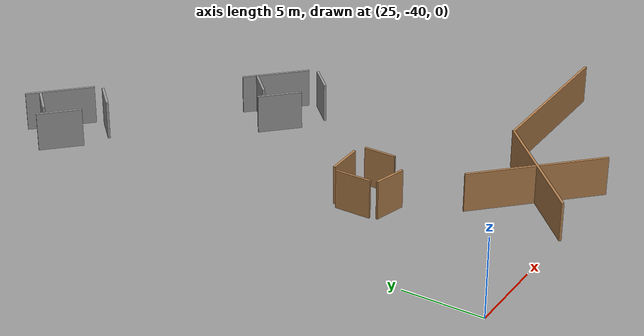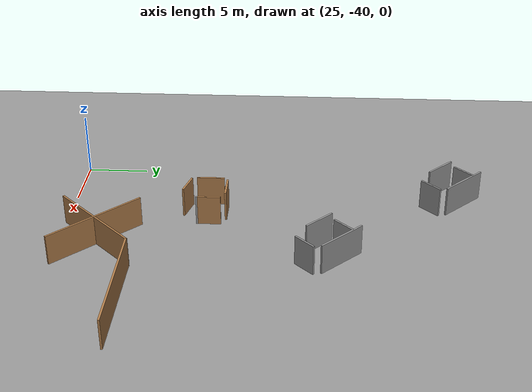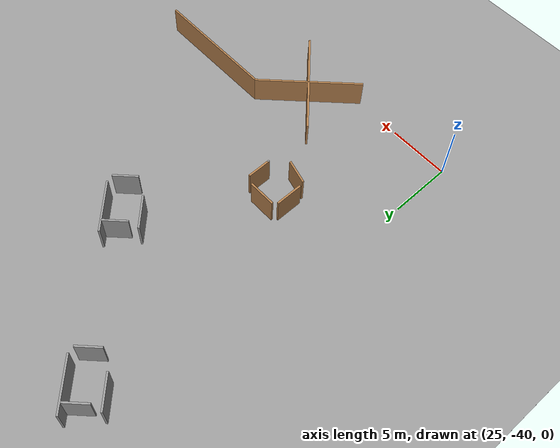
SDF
<sdf version="1.5">
 <world name="default">
  <model name="ground_plane">
   <static>1</static>
   <link name="link">
    <collision name="collision">
     <geometry><plane><normal>0 0 1</normal><size>100 100</size></plane></geometry>
     <surface><friction><ode><mu>100</mu><mu2>50</mu2></ode></friction></surface>
    </collision>
    <visual name="visual">
     <cast_shadows>0</cast_shadows>
     <geometry><plane><normal>0 0 1</normal><size>100 100</size></plane></geometry>
     <material>
      <script><uri>file://media/materials/scripts/gazebo.material</uri><name>Gazebo/Grey</name></script>
     </material>
    </visual>
   </link>
  </model>
  <model name="ground_plane_5">
   <static>1</static>
   <link name="link">
    <collision name="collision">
     <geometry><plane><normal>0 0 1</normal><size>100 100</size></plane></geometry>
     <surface><friction><ode><mu>100</mu><mu2>50</mu2></ode></friction></surface>
    </collision>
    <visual name="visual">
     <cast_shadows>0</cast_shadows>
     <geometry><plane><normal>0 0 1</normal><size>100 100</size></plane></geometry>
     <material>
      <script><uri>file://media/materials/scripts/gazebo.material</uri><name>Gazebo/Grey</name></script>
     </material>
    </visual>
   </link>
   <pose>34 -30 0 0 -0 0</pose>
  </model>
  <model name="wall-10m-ofoghi_13">
   <pose>45 -34 0 0 -0 0</pose>
   <link name="Wall_22">
    <collision name="Wall_22_Collision">
     <geometry><box><size>10 0.15 2.5</size></box></geometry>
     <pose>0 0 1.25 0 -0 0</pose>
    </collision>
    <visual name="Wall_22_Visual">
     <pose>0 0 1.25 0 -0 0</pose>
     <geometry><box><size>10 0.15 2.5</size></box></geometry>
     <material>
      <script><uri>file://media/materials/scripts/gazebo.material</uri><name>Gazebo/Wood</name></script>
      <ambient>1 1 1 1</ambient>
     </material>
    </visual>
   </link>
   <static>1</static>
  </model>
  <model name="obs2_2">
   <pose>29 -9 0 0 -0 0</pose>
   <link name="Wall_0">
    <collision name="Wall_0_Collision">
     <geometry><box><size>2 0.15 2.5</size></box></geometry>
     <pose>0 0 1.25 0 -0 0</pose>
    </collision>
    <visual name="Wall_0_Visual">
     <pose>0 0 1.25 0 -0 0</pose>
     <geometry><box><size>2 0.15 2.5</size></box></geometry>
     <material>
      <script><uri>file://media/materials/scripts/gazebo.material</uri><name>Gazebo/Grey</name></script>
      <ambient>1 1 1 1</ambient>
     </material>
    </visual>
    <pose>-0.796332 1.10862 0 0 -0 0.785398</pose>
   </link>
   <link name="Wall_2">
    <collision name="Wall_2_Collision">
     <geometry><box><size>4.25 0.15 2.5</size></box></geometry>
     <pose>0 0 1.25 0 -0 0</pose>
    </collision>
    <visual name="Wall_2_Visual">
     <pose>0 0 1.25 0 -0 0</pose>
     <geometry><box><size>4.25 0.15 2.5</size></box></geometry>
     <material>
      <script><uri>file://media/materials/scripts/gazebo.material</uri><name>Gazebo/Grey</name></script>
      <ambient>1 1 1 1</ambient>
     </material>
    </visual>
    <pose>0.773928 0.982661 0 0 0 -0.785398</pose>
   </link>
   <link name="Wall_4">
    <collision name="Wall_4_Collision">
     <geometry><box><size>2.75 0.15 2.5</size></box></geometry>
     <pose>0 0 1.25 0 -0 0</pose>
    </collision>
    <visual name="Wall_4_Visual">
     <pose>0 0 1.25 0 -0 0</pose>
     <geometry><box><size>2.75 0.15 2.5</size></box></geometry>
     <material>
      <script><uri>file://media/materials/scripts/gazebo.material</uri><name>Gazebo/Grey</name></script>
      <ambient>1 1 1 1</ambient>
     </material>
    </visual>
    <pose>-1.45556 -0.740711 0 0 0 -0.785398</pose>
   </link>
   <link name="Wall_6">
    <collision name="Wall_6_Collision">
     <geometry><box><size>2 0.15 2.5</size></box></geometry>
     <pose>0 0 1.25 0 -0 0</pose>
    </collision>
    <visual name="Wall_6_Visual">
     <pose>0 0 1.25 0 -0 0</pose>
     <geometry><box><size>2 0.15 2.5</size></box></geometry>
     <material>
      <script><uri>file://media/materials/scripts/gazebo.material</uri><name>Gazebo/Grey</name></script>
      <ambient>1 1 1 1</ambient>
     </material>
    </visual>
    <pose>1.72073 -1.77816 0 0 -0 0.785398</pose>
   </link>
   <static>1</static>
  </model>
  <model name="obs2_5">
   <pose>38 -19 0 0 -0 0</pose>
   <link name="Wall_0">
    <collision name="Wall_0_Collision">
     <geometry><box><size>2 0.15 2.5</size></box></geometry>
     <pose>0 0 1.25 0 -0 0</pose>
    </collision>
    <visual name="Wall_0_Visual">
     <pose>0 0 1.25 0 -0 0</pose>
     <geometry><box><size>2 0.15 2.5</size></box></geometry>
     <material>
      <script><uri>file://media/materials/scripts/gazebo.material</uri><name>Gazebo/Grey</name></script>
      <ambient>1 1 1 1</ambient>
     </material>
    </visual>
    <pose>-0.796332 1.10862 0 0 -0 0.785398</pose>
   </link>
   <link name="Wall_2">
    <collision name="Wall_2_Collision">
     <geometry><box><size>4.25 0.15 2.5</size></box></geometry>
     <pose>0 0 1.25 0 -0 0</pose>
    </collision>
    <visual name="Wall_2_Visual">
     <pose>0 0 1.25 0 -0 0</pose>
     <geometry><box><size>4.25 0.15 2.5</size></box></geometry>
     <material>
      <script><uri>file://media/materials/scripts/gazebo.material</uri><name>Gazebo/Grey</name></script>
      <ambient>1 1 1 1</ambient>
     </material>
    </visual>
    <pose>0.773928 0.982661 0 0 0 -0.785398</pose>
   </link>
   <link name="Wall_4">
    <collision name="Wall_4_Collision">
     <geometry><box><size>2.75 0.15 2.5</size></box></geometry>
     <pose>0 0 1.25 0 -0 0</pose>
    </collision>
    <visual name="Wall_4_Visual">
     <pose>0 0 1.25 0 -0 0</pose>
     <geometry><box><size>2.75 0.15 2.5</size></box></geometry>
     <material>
      <script><uri>file://media/materials/scripts/gazebo.material</uri><name>Gazebo/Grey</name></script>
      <ambient>1 1 1 1</ambient>
     </material>
    </visual>
    <pose>-1.45556 -0.740711 0 0 0 -0.785398</pose>
   </link>
   <link name="Wall_6">
    <collision name="Wall_6_Collision">
     <geometry><box><size>2 0.15 2.5</size></box></geometry>
     <pose>0 0 1.25 0 -0 0</pose>
    </collision>
    <visual name="Wall_6_Visual">
     <pose>0 0 1.25 0 -0 0</pose>
     <geometry><box><size>2 0.15 2.5</size></box></geometry>
     <material>
      <script><uri>file://media/materials/scripts/gazebo.material</uri><name>Gazebo/Grey</name></script>
      <ambient>1 1 1 1</ambient>
     </material>
    </visual>
    <pose>1.72073 -1.77816 0 0 -0 0.785398</pose>
   </link>
   <static>1</static>
  </model>
  <model name="obs1_6">
   <pose>32 -29 0 0 -0 0</pose>
   <link name="Wall_10">
    <collision name="Wall_10_Collision">
     <geometry><box><size>2 0.15 2.5</size></box></geometry>
     <pose>0 0 1.25 0 -0 0</pose>
    </collision>
    <visual name="Wall_10_Visual">
     <pose>0 0 1.25 0 -0 0</pose>
     <geometry><box><size>2 0.15 2.5</size></box></geometry>
     <material>
      <script><uri>file://media/materials/scripts/gazebo.material</uri><name>Gazebo/Wood</name></script>
      <ambient>1 1 1 1</ambient>
     </material>
    </visual>
    <pose>-0.505188 -1.46687 0 0 0 -0.261799</pose>
   </link>
   <link name="Wall_2">
    <collision name="Wall_2_Collision">
     <geometry><box><size>2.25 0.15 2.5</size></box></geometry>
     <pose>0 0 1.25 0 -0 0</pose>
    </collision>
    <visual name="Wall_2_Visual">
     <pose>0 0 1.25 0 -0 0</pose>
     <geometry><box><size>2.25 0.15 2.5</size></box></geometry>
     <material>
      <script><uri>file://media/materials/scripts/gazebo.material</uri><name>Gazebo/Wood</name></script>
      <ambient>1 1 1 1</ambient>
     </material>
    </visual>
    <pose>-1.58039 0.313508 0 0 0 -1.5708</pose>
   </link>
   <link name="Wall_5">
    <collision name="Wall_5_Collision">
     <geometry><box><size>2.25 0.15 2.5</size></box></geometry>
     <pose>0 0 1.25 0 -0 0</pose>
    </collision>
    <visual name="Wall_5_Visual">
     <pose>0 0 1.25 0 -0 0</pose>
     <geometry><box><size>2.25 0.15 2.5</size></box></geometry>
     <material>
      <script><uri>file://media/materials/scripts/gazebo.material</uri><name>Gazebo/Wood</name></script>
      <ambient>1 1 1 1</ambient>
     </material>
    </visual>
    <pose>-0.185262 1.72313 0 0 -0 0</pose>
   </link>
   <link name="Wall_7">
    <collision name="Wall_7_Collision">
     <geometry><box><size>2 0.15 2.5</size></box></geometry>
     <pose>0 0 1.25 0 -0 0</pose>
    </collision>
    <visual name="Wall_7_Visual">
     <pose>0 0 1.25 0 -0 0</pose>
     <geometry><box><size>2 0.15 2.5</size></box></geometry>
     <material>
      <script><uri>file://media/materials/scripts/gazebo.material</uri><name>Gazebo/Wood</name></script>
      <ambient>1 1 1 1</ambient>
     </material>
    </visual>
    <pose>1.58039 0.398833 0 0 0 -1.5708</pose>
   </link>
   <link name="Wall_8">
    <collision name="Wall_8_Collision">
     <geometry><box><size>0.15 0.15 2.5</size></box></geometry>
     <pose>0 0 1.25 0 -0 0</pose>
    </collision>
    <visual name="Wall_8_Visual">
     <pose>0 0 1.25 0 -0 0</pose>
     <geometry><box><size>0.15 0.15 2.5</size></box></geometry>
     <material>
      <script><uri>file://media/materials/scripts/gazebo.material</uri><name>Gazebo/Grey</name></script>
      <ambient>1 1 1 1</ambient>
     </material>
    </visual>
    <pose>1.58039 -0.526167 0 0 -0 0</pose>
   </link>
   <static>1</static>
  </model>
  <model name="obs3_8">
   <pose>37 -37 0 0 -0 0</pose>
   <link name="Wall_0">
    <collision name="Wall_0_Collision">
     <geometry><box><size>8.63528 0.15 2.5</size></box></geometry>
     <pose>0 0 1.25 0 -0 0</pose>
    </collision>
    <visual name="Wall_0_Visual">
     <pose>0 0 1.25 0 -0 0</pose>
     <geometry><box><size>8.63528 0.15 2.5</size></box></geometry>
     <material>
      <script><uri>file://media/materials/scripts/gazebo.material</uri><name>Gazebo/Wood</name></script>
      <ambient>1 1 1 1</ambient>
     </material>
    </visual>
    <pose>0 0 0 0 0 -0.785398</pose>
   </link>
   <link name="Wall_2">
    <collision name="Wall_2_Collision">
     <geometry><box><size>8.63528 0.15 2.5</size></box></geometry>
     <pose>0 0 1.25 0 -0 0</pose>
    </collision>
    <visual name="Wall_2_Visual">
     <pose>0 0 1.25 0 -0 0</pose>
     <geometry><box><size>8.63528 0.15 2.5</size></box></geometry>
     <material>
      <script><uri>file://media/materials/scripts/gazebo.material</uri><name>Gazebo/Wood</name></script>
      <ambient>1 1 1 1</ambient>
     </material>
    </visual>
    <pose>0 0 0 0 0 -2.35619</pose>
   </link>
   <static>1</static>
  </model>
 </world>
</sdf>
